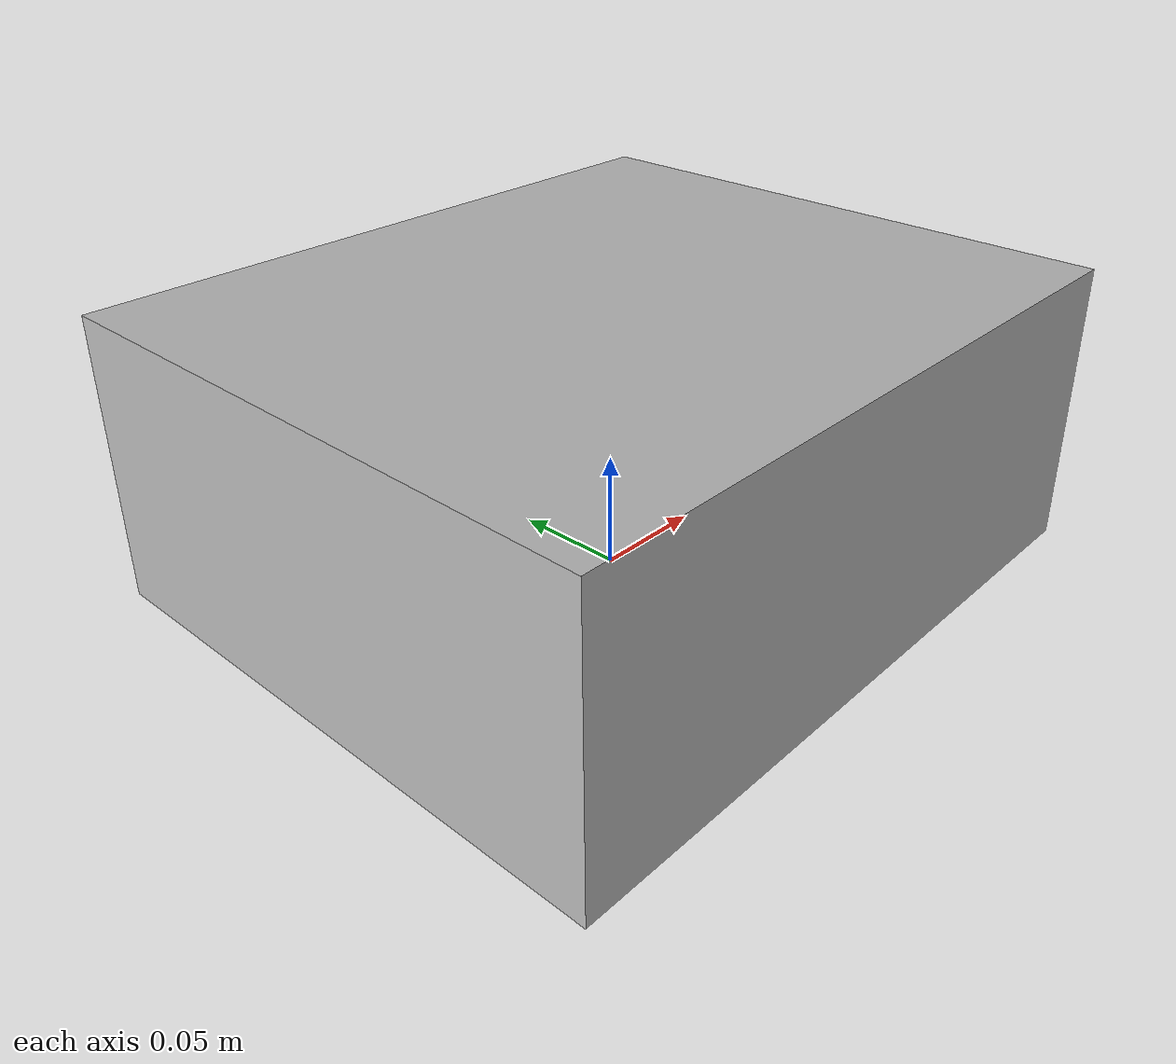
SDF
<?xml version="1.0" ?>
<sdf version="1.9">
  <model name="damaged_box">
    <link name="link">
      <inertial>
        <pose>0 0 0.061829 0 0 0</pose>
        <mass>0.8</mass>
        <inertia>
          <ixx>0.005343</ixx>
          <ixy>0.0</ixy>
          <ixz>0.0</ixz>
          <iyy>0.007019</iyy>
          <iyz>0.0</iyz>
          <izz>0.010324</izz>
        </inertia>
      </inertial>
      <collision name="collision">
        <pose>0 0 0.061829 0 0 0</pose>
        <geometry>
          <mesh>
            <uri>meshes/damaged_box_collision_approx.stl</uri>
          </mesh>
        </geometry>
        <surface>
          <friction>
            <ode>
              <mu>1.0</mu>
              <mu2>1.0</mu2>
            </ode>
          </friction>
        </surface>
      </collision>
      <visual name="visual">
        <pose>0 0 0.061832 1.5708 0 0</pose>
        <geometry>
          <mesh>
            <uri>meshes/damaged_box.obj</uri>
            <scale>0.15 0.15 0.15</scale>
          </mesh>
        </geometry>
      </visual>
    </link>
  </model>
</sdf>
